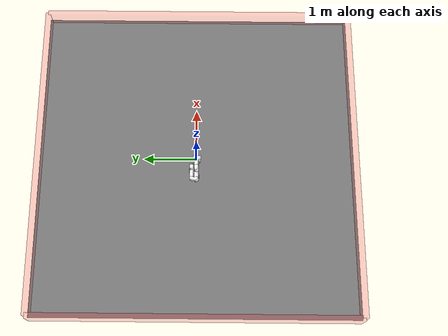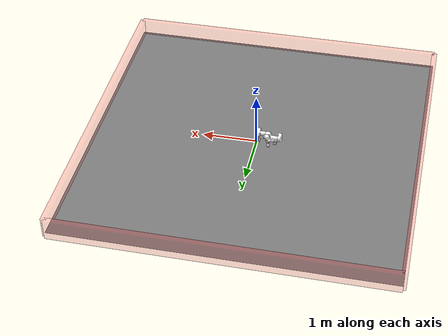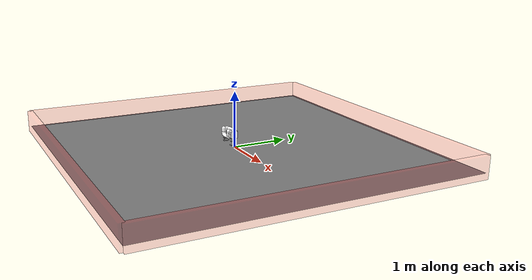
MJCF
<mujoco model="ufactory_lite6_airbearings">
  <compiler angle="radian" autolimits="true"/>
  <option integrator="implicitfast" timestep="0.002" gravity="0 0 -9.81"/>

  <default>
    <default class="lite6">
      <geom type="mesh"/>
      <joint axis="0 0 1" damping="20.0" armature="0.8"/>
      <position kp="200" kv="10"/>
      <default class="size1">
        <position forcerange="-50 50"/>
      </default>
      <default class="size2">
        <position forcerange="-32 32"/>
      </default>
      <default class="size3">
        <position forcerange="-20 20"/>
      </default>
      <default class="visual">
        <geom contype="0" conaffinity="0" group="2" material="white"/>
      </default>
      <default class="collision">
        <geom group="3" mass="0" density="0" contype="1" conaffinity="1"/>
      </default>
      <site size="0.001" rgba="0.5 0.5 0.5 0.3" group="4"/>
    </default>

    <default class="bearing_visual">
      <geom type="cylinder" contype="0" conaffinity="0" group="2" material="silver"/>
    </default>

    <default class="bearing_contact">
      <geom type="cylinder" group="3" friction="0.003 0.0001 0.0001" solref="0.02 1.5" solimp="0.9 0.95 0.001"/>
    </default>

    <default class="support_visual">
      <geom contype="0" conaffinity="0" group="2" material="silver"/>
    </default>
  </default>

  <asset>
    <material name="white" rgba="1 1 1 1"/>
    <material name="silver" rgba=".753 .753 .753 1"/>
    <material name="mesa_mat" rgba="0.8 0.8 0.8 1"/>
    <material name="support_mat" rgba="0.6 0.6 0.6 1"/>

    <mesh file="assets/visual/link_base.stl"/>
    <mesh file="assets/visual/link1.stl"/>
    <mesh file="assets/visual/link2.stl"/>
    <mesh file="assets/visual/link3.stl"/>
    <mesh file="assets/visual/link4.stl"/>
    <mesh file="assets/visual/link5.stl"/>
    <mesh file="assets/visual/link6.stl"/>

    <mesh name="link_base_c" file="assets/collision/link_base.stl"/>
    <mesh name="link1_c" file="assets/collision/link1.stl"/>
    <mesh name="link2_c" file="assets/collision/link2.stl"/>
    <mesh name="link3_c" file="assets/collision/link3.stl"/>
    <mesh name="link4_c" file="assets/collision/link4.stl"/>
    <mesh name="link5_c" file="assets/collision/link5.stl"/>
    <mesh name="link6_c" file="assets/collision/link6.stl"/>
  </asset>

  <worldbody>
    <light pos="0 0 3" dir="0 0 -1"/>

    <geom name="floor" type="plane" pos="0 0 0" size="3 3 0.1" contype="1" conaffinity="1" friction="0.002 0.001 0.001" solref="0.01 0.8" solimp="0.95 0.99 0.001"/>

    <geom name="wall1" type="box" size="3 0.05 0.2" pos="0 3 0.1" rgba="1 0 0 0.2"/>
    <geom name="wall2" type="box" size="3 0.05 0.2" pos="0 -3 0.1" rgba="1 0 0 0.2"/>
    <geom name="wall3" type="box" size="0.05 3 0.2" pos="3 0 0.1" rgba="1 0 0 0.2"/>
    <geom name="wall4" type="box" size="0.05 3 0.2" pos="-3 0 0.1" rgba="1 0 0 0.2"/>

    <body name="base_root" pos="0 0 0.22" quat="0.7071068 -0.7071068 0 0">
      <freejoint name="root_free"/>
      <body name="support_frame" pos="0 0 -0.21">
        <inertial pos="0 0 0" mass="0.001" diaginertia="0.00001 0.00001 0.00001"/>

        <!-- APOYO IZQUIERDO: Longitud total 14 cm (REFERENCIA) -->
        <!-- APOYO IZQUIERDO: Longitud total 14 cm (REFERENCIA) -->
        <body name="support_left" pos="-0.04 0.06 0.19" quat="0.5 0.5 0.5 -0.5">
          <inertial pos="0 0 -0.07" mass="0.1" diaginertia="0.001 0.001 0.001"/>
          <geom name="sup_left_plate1" type="box" pos="0.0 0 -0.0065" size="0.05 0.028 0.004" material="support_mat" group="2"/>
          <!-- Varillas de 12 cm (de z=-0.01 a z=-0.13) -->
          <geom name="sup_left_rod1" type="capsule" fromto="-0.04 0 -0.01 -0.04 0 -0.13" size="0.0035" material="support_mat" group="2"/>
          <geom name="sup_left_rod2" type="capsule" fromto="0.04 0 -0.01 0.04 0 -0.13" size="0.0035" material="support_mat" group="2"/>
          <geom name="sup_left_plate2" type="box" pos="0.0 0 -0.13" size="0.05 0.028 0.004" material="support_mat" group="2"/>
          <geom name="bearing_left_vis" type="cylinder" pos="0.0 0 -0.135" size="0.024 0.005" material="silver" group="2"/>
          <geom name="bearing_left_contact" type="cylinder" pos="0.0 0 -0.135" size="0.024 0.005" zaxis="0 1 0" friction="0.01 0.005 0.0001" solref="0.01 0.8" solimp="0.95 0.99 0.001" condim="6" group="3"/>
        </body>
      </body>

      <body name="link_base" childclass="lite6" pos="0 0 0" quat="0.7071068 0 -0.7071068 0">
        <inertial pos="-0.00829545 3.26357e-05 0.0631195" mass="1.65394" diaginertia="0.01 0.01 0.01"/>
        <geom class="visual" mesh="link_base"/>
        <geom name="link_base_c" class="collision" mesh="link_base_c"/>

        <body name="link1" pos="0 0 0.2435">
          <inertial pos="-0.00036 0.04195 -0.0025" quat="0.608059 0.792349 -0.0438707 0.0228718" mass="1.411" diaginertia="0.00145276 0.00135275 0.000853355"/>
          <joint name="joint1" range="-6.28319 6.28319"/>
          <geom class="visual" mesh="link1"/>
          <geom name="link1_c" class="collision" mesh="link1_c"/>

          <body name="link2" quat="-1 1 1 1">
            <inertial pos="0.179 0 0.0584" quat="0.417561 0.571619 0.569585 0.417693" mass="1.34" diaginertia="0.00560971 0.0052152 0.00122018"/>
            <joint name="joint2" range="-2.61799 2.61799"/>
            <geom class="visual" mesh="link2"/>
            <geom name="link2_c" class="collision" mesh="link2_c"/>

            <!-- APOYO CENTRAL: Longitud total 6.55 cm (0.5mm extra para garantizar contacto) -->
            <body name="support_center" pos="0.1065 0 0.135" quat="0 0.70710678 0.70710678 0">
              <inertial pos="0 0 -0.03" mass="0.1" diaginertia="0.001 0.001 0.001"/>
              <geom name="sup_cent_plate1" type="box" pos="0 0 -0.0065" size="0.05 0.028 0.004" material="support_mat" group="2"/>
              <!-- Varillas de 4.55 cm (de z=-0.01 a z=-0.0555) -->
              <geom name="sup_cent_rod1" type="capsule" fromto="-0.04 0 -0.01 -0.04 0 -0.0555" size="0.0035" material="support_mat" group="2"/>
              <geom name="sup_cent_rod2" type="capsule" fromto="0.04 0 -0.01 0.04 0 -0.0555" size="0.0035" material="support_mat" group="2"/>
              <geom name="sup_cent_plate2" type="box" pos="0 0 -0.0555" size="0.05 0.028 0.004" material="support_mat" group="2"/>
              <geom name="bearing_cent_vis" type="cylinder" pos="0 0 -0.0605" size="0.024 0.005" material="silver" group="2"/>
              <geom name="bearing_center_contact" type="cylinder" pos="0 0 -0.0605" size="0.024 0.005" zaxis="0 1 0" friction="0.01 0.005 0.0001" solref="0.01 0.8" solimp="0.95 0.99 0.001" condim="6" group="3"/>
            </body>

            <body name="link3" pos="0.2002 0 0" quat="-2.59734e-06 -0.707105 -0.707108 -2.59735e-06">
              <inertial pos="0.072 -0.0357 -0.001" quat="0.128259 0.662963 -0.167256 0.71837" mass="0.953" diaginertia="0.0018521 0.00175546 0.000703807"/>
              <joint name="joint3" range="-3.5 3.5"/>
              <geom class="visual" mesh="link3"/>
              <geom name="link3_c" class="collision" mesh="link3_c"/>

              <body name="link4" pos="0.087 -0.22761 0" quat="0.707105 0.707108 0 0">
                <inertial pos="-0.002 -0.0285 -0.0813" quat="0.975248 0.22109 0.00203498 -0.00262178" mass="1.284" diaginertia="0.00370503 0.00349091 0.00109586"/>
                <joint name="joint4" range="-6.28319 6.28319"/>
                <geom class="visual" mesh="link4"/>
                <geom name="link4_c" class="collision" mesh="link4_c"/>

                <!-- APOYO DERECHO: Longitud total 11 cm -->
                <body name="support_right" pos="-0.002 -0.09 -0.021" quat="0 0 0.70711 0.70710">
                  <inertial pos="0 0 -0.05" mass="0.1" diaginertia="0.001 0.001 0.001"/>
                  <geom name="sup_right_plate1" type="box" pos="0 0 -0.0065" size="0.05 0.028 0.004" material="support_mat" group="2"/>
                  <!-- Varillas de 9 cm (de z=-0.01 a z=-0.10) -->
                  <geom name="sup_right_rod1" type="capsule" fromto="-0.04 0 -0.01 -0.04 0 -0.10" size="0.0035" material="support_mat" group="2"/>
                  <geom name="sup_right_rod2" type="capsule" fromto="0.04 0 -0.01 0.04 0 -0.10" size="0.0035" material="support_mat" group="2"/>
                  <geom name="sup_right_plate2" type="box" pos="0 0 -0.10" size="0.05 0.028 0.004" material="support_mat" group="2"/>
                  <geom name="bearing_right_vis" type="cylinder" pos="0 0 -0.105" size="0.024 0.005" material="silver" group="2"/>
                  <geom name="bearing_right_contact" type="cylinder" pos="0 0 -0.105" size="0.024 0.005" zaxis="0 1 0" friction="0.01 0.005 0.0001" solref="0.01 0.8" solimp="0.95 0.99 0.001" condim="6" group="3"/>
                </body>

                <body name="link5" quat="1 1 0 0">
                  <inertial pos="0 0.01 0.0019" quat="0.71423 0.696388 -0.0531933 0.0456997" mass="0.804" diaginertia="0.000567553 0.000529266 0.000507681"/>
                  <joint name="joint5" range="-2.1642 2.1642"/>
                  <geom class="visual" mesh="link5"/>
                  <geom name="link5_c" class="collision" mesh="link5_c"/>

                  <body name="link6" pos="0 0.0625 0" quat="1 -1 0 0">
                    <inertial pos="0 -0.00194 -0.0102" quat="-0.0376023 0.704057 0.0446838 0.707738" mass="0.13" diaginertia="0.000148148 8.57757e-05 7.71412e-05"/>
                    <joint name="joint6" range="-6.28319 6.28319"/>
                    <geom class="visual" mesh="link6" material="silver"/>
                    <geom name="link6_c" class="collision" mesh="link6_c"/>
                    <site name="attachment_site"/>
                  </body>
                </body>
              </body>
            </body>
          </body>
        </body>
      </body>
    </body>
  </worldbody>

  <actuator>
    <position name="act_joint1" joint="joint1" class="size1" ctrlrange="-6.28319 6.28319"/>
    <position name="act_joint2" joint="joint2" class="size1" ctrlrange="-2.61799 2.61799"/>
    <position name="act_joint3" joint="joint3" class="size2" ctrlrange="-0.061087 5.23599"/>
    <position name="act_joint4" joint="joint4" class="size2" ctrlrange="-6.28319 6.28319"/>
    <position name="act_joint5" joint="joint5" class="size2" ctrlrange="-2.1642 2.1642"/>
    <position name="act_joint6" joint="joint6" class="size3" ctrlrange="-6.28319 6.28319"/>
  </actuator>

  <keyframe>
    <key name="home" qpos="0 0 0.22 0.7071068 -0.7071068 0 0 0 0 3.1415 0 0 0" ctrl="0 0 3.1415 0 0 0"/>
  </keyframe>
  <visual>
    <global offwidth="1920" offheight="1080"/>
  </visual>
</mujoco>
